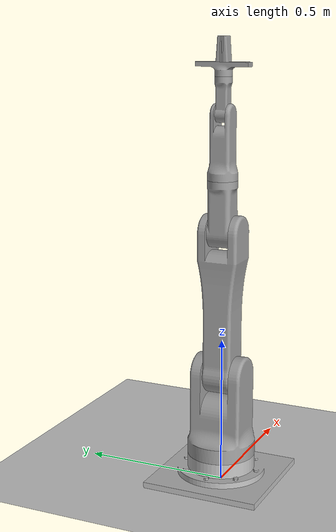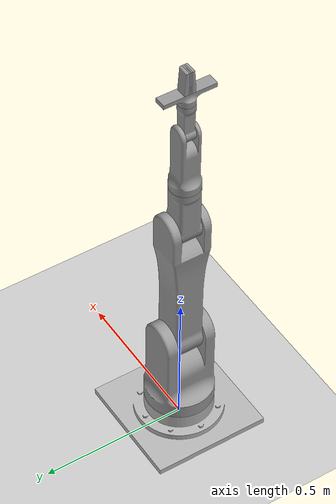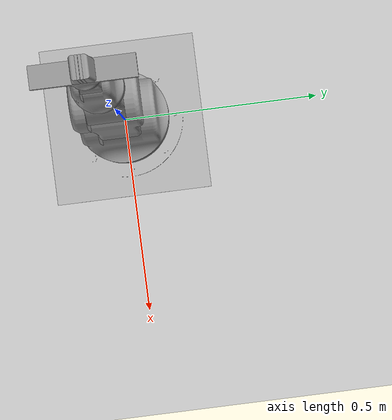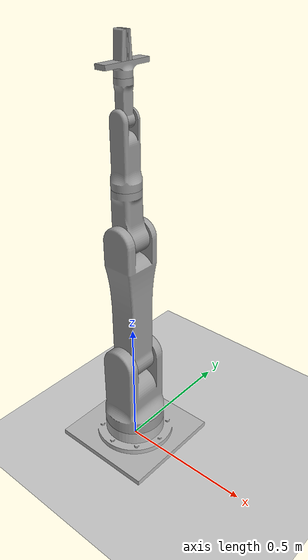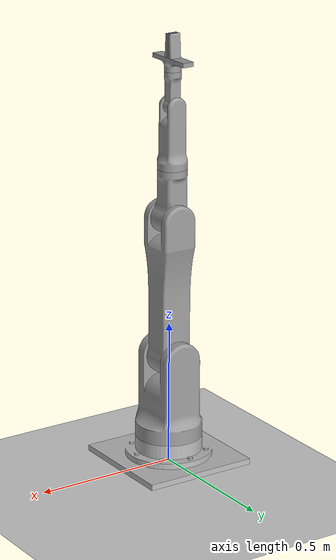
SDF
<sdf version="1.7">
 <world name="default">
  <light name="sun" type="directional">
   <pose>0 0 10 0 -0 0</pose>
   <diffuse>0.8 0.8 0.8 1</diffuse>
   <specular>0.2 0.2 0.2 1</specular>
   <attenuation>
    <range>1000</range>
    <constant>0.9</constant>
    <linear>0.01</linear>
    <quadratic>0.001</quadratic>
   </attenuation>
   <direction>-0.5 0.1 -0.9</direction>
   <spot><inner_angle>0</inner_angle><outer_angle>0</outer_angle><falloff>0</falloff></spot>
  </light>
  <model name="ground_plane">
   <static>1</static>
   <link name="link">
    <collision name="collision">
     <geometry><plane><normal>0 0 1</normal><size>100 100</size></plane></geometry>
     <surface>
      <contact><collide_bitmask>65535</collide_bitmask></contact>
      <friction><ode><mu>100</mu><mu2>50</mu2></ode></friction>
     </surface>
    </collision>
    <visual name="visual">
     <cast_shadows>0</cast_shadows>
     <geometry><plane><normal>0 0 1</normal><size>100 100</size></plane></geometry>
     <material>
      <script><uri>file://media/materials/scripts/gazebo.material</uri><name>Gazebo/Grey</name></script>
     </material>
    </visual>
   </link>
  </model>
  <gravity>0 0 -9.8</gravity>
  <magnetic_field>6e-06 2.3e-05 -4.2e-05</magnetic_field>
  <atmosphere type="adiabatic"/>
  <physics name="default_physics" default="0" type="ode">
   <max_step_size>0.001</max_step_size>
   <real_time_factor>1</real_time_factor>
   <real_time_update_rate>1000</real_time_update_rate>
   <ode>
    <solver>
     <type>quick</type>
     <iters>25</iters>
     <sor>1.0</sor>
     <use_dynamic_moi_rescaling>false</use_dynamic_moi_rescaling>
    </solver>
   </ode>
  </physics>
  <scene><ambient>0.4 0.4 0.4 1</ambient><background>0.7 0.7 0.7 1</background><shadows>1</shadows></scene>
  <spherical_coordinates>
   <surface_model>EARTH_WGS84</surface_model>
   <latitude_deg>0</latitude_deg>
   <longitude_deg>0</longitude_deg>
   <elevation>0</elevation>
   <heading_deg>0</heading_deg>
  </spherical_coordinates>
  <model name="robot_arm">
   <joint name="base_joint" type="fixed">
    <pose relative_to="__model__">0 0 0 0 -0 0</pose>
    <parent>world</parent>
    <child>base_link</child>
   </joint>
   <link name="base_link">
    <pose relative_to="base_joint">0 0 0 0 -0 0</pose>
    <inertial>
     <pose>0 -0 0.041324 0 -0 0</pose>
     <mass>18.0995</mass>
     <inertia>
      <ixx>0.167384</ixx>
      <ixy>0</ixy>
      <ixz>0</ixz>
      <iyy>0.167384</iyy>
      <iyz>6.16298e-33</iyz>
      <izz>0.310998</izz>
     </inertia>
    </inertial>
    <collision name="base_link_fixed_joint_lump__base_collision">
     <pose>0 0 0.01 0 -0 0</pose>
     <geometry>
      <mesh>
       <scale>0.001 0.001 0.001</scale>
       <uri>/home/fort/base/project_ws/src/robot_arm_description/meshes/base_link.stl</uri>
      </mesh>
     </geometry>
    </collision>
    <visual name="base_link_fixed_joint_lump__base_visual">
     <pose>0 0 0.01 0 -0 0</pose>
     <geometry>
      <mesh>
       <scale>0.001 0.001 0.001</scale>
       <uri>/home/fort/base/project_ws/src/robot_arm_description/meshes/base_link.stl</uri>
      </mesh>
     </geometry>
    </visual>
    <self_collide>1</self_collide>
   </link>
   <joint name="Revolute1" type="revolute">
    <pose relative_to="base_link">0 0 0.1 0 -0 0</pose>
    <parent>base_link</parent>
    <child>waist_1</child>
    <axis>
     <xyz>0 0 1</xyz>
     <limit><lower>0</lower><upper>6.28318</upper><effort>100</effort><velocity>100</velocity></limit>
     <dynamics><spring_reference>0</spring_reference><spring_stiffness>0</spring_stiffness></dynamics>
    </axis>
    <physics><ode><limit><cfm>0</cfm><erp>0.2</erp></limit></ode></physics>
    <sensor name="waist_1_ft_sensor" type="force_torque">
     <force_torque><frame>child</frame><measure_direction>child_to_parent</measure_direction></force_torque>
    </sensor>
   </joint>
   <link name="waist_1">
    <pose relative_to="Revolute1">0 0 0 0 -0 0</pose>
    <inertial>
     <pose>-0 -1e-06 0.123641 0 -0 0</pose>
     <mass>20.1835</mass>
     <inertia>
      <ixx>0.235705</ixx>
      <ixy>0</ixy>
      <ixz>0</ixz>
      <iyy>0.209956</iyy>
      <iyz>-1e-06</iyz>
      <izz>0.110543</izz>
     </inertia>
    </inertial>
    <collision name="waist_1_collision">
     <pose>0 0 -0.09 0 -0 0</pose>
     <geometry>
      <mesh>
       <scale>0.001 0.001 0.001</scale>
       <uri>/home/fort/base/project_ws/src/robot_arm_description/meshes/waist_1.stl</uri>
      </mesh>
     </geometry>
     <surface><friction><ode><mu>0.2</mu><mu2>0.2</mu2></ode></friction></surface>
    </collision>
    <visual name="waist_1_visual">
     <pose>0 0 -0.09 0 -0 0</pose>
     <geometry>
      <mesh>
       <scale>0.001 0.001 0.001</scale>
       <uri>/home/fort/base/project_ws/src/robot_arm_description/meshes/waist_1.stl</uri>
      </mesh>
     </geometry>
     <material>
      <script><name>Gazebo/Grey</name><uri>file://media/materials/scripts/gazebo.material</uri></script>
     </material>
    </visual>
    <self_collide>1</self_collide>
   </link>
   <joint name="Revolute2" type="revolute">
    <pose relative_to="waist_1">0 0.05 0.28 0 -0 0</pose>
    <parent>waist_1</parent>
    <child>upperarm_1</child>
    <axis>
     <xyz>0 -1 0</xyz>
     <limit><lower>-1.91986</lower><upper>1.91986</upper><effort>100</effort><velocity>100</velocity></limit>
     <dynamics><spring_reference>0</spring_reference><spring_stiffness>0</spring_stiffness></dynamics>
    </axis>
    <physics><ode><limit><cfm>0</cfm><erp>0.2</erp></limit></ode></physics>
    <sensor name="upperarm_1_ft_sensor" type="force_torque">
     <force_torque><frame>child</frame><measure_direction>child_to_parent</measure_direction></force_torque>
    </sensor>
   </joint>
   <link name="upperarm_1">
    <pose relative_to="Revolute2">0 0 0 0 -0 0</pose>
    <inertial>
     <pose>0 -0.05 0.232772 0 -0 0</pose>
     <mass>17.5886</mass>
     <inertia>
      <ixx>0.489324</ixx>
      <ixy>0</ixy>
      <ixz>0</ixz>
      <iyy>0.485246</iyy>
      <iyz>0</iyz>
      <izz>0.040061</izz>
     </inertia>
    </inertial>
    <collision name="upperarm_1_collision">
     <pose>0 -0.05 -0.37 0 -0 0</pose>
     <geometry>
      <mesh>
       <scale>0.001 0.001 0.001</scale>
       <uri>/home/fort/base/project_ws/src/robot_arm_description/meshes/upperarm_1.stl</uri>
      </mesh>
     </geometry>
     <surface><friction><ode><mu>0.2</mu><mu2>0.2</mu2></ode></friction></surface>
    </collision>
    <visual name="upperarm_1_visual">
     <pose>0 -0.05 -0.37 0 -0 0</pose>
     <geometry>
      <mesh>
       <scale>0.001 0.001 0.001</scale>
       <uri>/home/fort/base/project_ws/src/robot_arm_description/meshes/upperarm_1.stl</uri>
      </mesh>
     </geometry>
     <material>
      <script><name>Gazebo/Grey</name><uri>file://media/materials/scripts/gazebo.material</uri></script>
     </material>
    </visual>
    <self_collide>1</self_collide>
   </link>
   <joint name="Revolute3" type="revolute">
    <pose relative_to="upperarm_1">0 -0.09 0.49 0 -0 0</pose>
    <parent>upperarm_1</parent>
    <child>forearm1_1</child>
    <axis>
     <xyz>0 1 0</xyz>
     <limit><lower>-0.349066</lower><upper>2.0944</upper><effort>100</effort><velocity>100</velocity></limit>
     <dynamics><spring_reference>0</spring_reference><spring_stiffness>0</spring_stiffness></dynamics>
    </axis>
    <physics><ode><limit><cfm>0</cfm><erp>0.2</erp></limit></ode></physics>
    <sensor name="forearm1_1_ft_sensor" type="force_torque">
     <force_torque><frame>child</frame><measure_direction>child_to_parent</measure_direction></force_torque>
    </sensor>
   </joint>
   <link name="forearm1_1">
    <pose relative_to="Revolute3">0 0 0 0 -0 0</pose>
    <inertial>
     <pose>-0.006297 0.04 0.06478 0 -0 0</pose>
     <mass>4.07067</mass>
     <inertia>
      <ixx>0.019208</ixx>
      <ixy>0</ixy>
      <ixz>0.001037</ixz>
      <iyy>0.019543</iyy>
      <iyz>0</iyz>
      <izz>0.004706</izz>
     </inertia>
    </inertial>
    <collision name="forearm1_1_collision">
     <pose>0 0.04 -0.86 0 -0 0</pose>
     <geometry>
      <mesh>
       <scale>0.001 0.001 0.001</scale>
       <uri>/home/fort/base/project_ws/src/robot_arm_description/meshes/forearm1_1.stl</uri>
      </mesh>
     </geometry>
     <surface><friction><ode><mu>0.2</mu><mu2>0.2</mu2></ode></friction></surface>
    </collision>
    <visual name="forearm1_1_visual">
     <pose>0 0.04 -0.86 0 -0 0</pose>
     <geometry>
      <mesh>
       <scale>0.001 0.001 0.001</scale>
       <uri>/home/fort/base/project_ws/src/robot_arm_description/meshes/forearm1_1.stl</uri>
      </mesh>
     </geometry>
     <material>
      <script><name>Gazebo/Grey</name><uri>file://media/materials/scripts/gazebo.material</uri></script>
     </material>
    </visual>
    <self_collide>1</self_collide>
   </link>
   <joint name="Revolute4" type="revolute">
    <pose relative_to="forearm1_1">-0.01 0.04 0.175 0 -0 0</pose>
    <parent>forearm1_1</parent>
    <child>forearm2_1</child>
    <axis>
     <xyz>0 0 1</xyz>
     <limit><lower>0</lower><upper>6.28318</upper><effort>100</effort><velocity>100</velocity></limit>
     <dynamics><spring_reference>0</spring_reference><spring_stiffness>0</spring_stiffness></dynamics>
    </axis>
    <physics><ode><limit><cfm>0</cfm><erp>0.2</erp></limit></ode></physics>
    <sensor name="forearm2_1_ft_sensor" type="force_torque">
     <force_torque><frame>child</frame><measure_direction>child_to_parent</measure_direction></force_torque>
    </sensor>
   </joint>
   <link name="forearm2_1">
    <pose relative_to="Revolute4">0 0 0 0 -0 0</pose>
    <inertial>
     <pose>-0 1e-06 0.092684 0 -0 0</pose>
     <mass>2.84995</mass>
     <inertia>
      <ixx>0.013062</ixx>
      <ixy>0</ixy>
      <ixz>0</ixz>
      <iyy>0.012885</iyy>
      <iyz>0</iyz>
      <izz>0.002689</izz>
     </inertia>
    </inertial>
    <collision name="forearm2_1_collision">
     <pose>0.01 0 -1.035 0 -0 0</pose>
     <geometry>
      <mesh>
       <scale>0.001 0.001 0.001</scale>
       <uri>/home/fort/base/project_ws/src/robot_arm_description/meshes/forearm2_1.stl</uri>
      </mesh>
     </geometry>
     <surface><friction><ode><mu>0.2</mu><mu2>0.2</mu2></ode></friction></surface>
    </collision>
    <visual name="forearm2_1_visual">
     <pose>0.01 0 -1.035 0 -0 0</pose>
     <geometry>
      <mesh>
       <scale>0.001 0.001 0.001</scale>
       <uri>/home/fort/base/project_ws/src/robot_arm_description/meshes/forearm2_1.stl</uri>
      </mesh>
     </geometry>
     <material>
      <script><name>Gazebo/Grey</name><uri>file://media/materials/scripts/gazebo.material</uri></script>
     </material>
    </visual>
    <self_collide>1</self_collide>
   </link>
   <joint name="Revolute5" type="revolute">
    <pose relative_to="forearm2_1">0 -0.02 0.21 0 -0 0</pose>
    <parent>forearm2_1</parent>
    <child>wrist1_1</child>
    <axis>
     <xyz>0 1 0</xyz>
     <limit><lower>-0.785398</lower><upper>2.18166</upper><effort>100</effort><velocity>100</velocity></limit>
     <dynamics><spring_reference>0</spring_reference><spring_stiffness>0</spring_stiffness></dynamics>
    </axis>
    <physics><ode><limit><cfm>0</cfm><erp>0.2</erp></limit></ode></physics>
    <sensor name="wrist1_1_ft_sensor" type="force_torque">
     <force_torque><frame>child</frame><measure_direction>child_to_parent</measure_direction></force_torque>
    </sensor>
   </joint>
   <link name="wrist1_1">
    <pose relative_to="Revolute5">0 0 0 0 -0 0</pose>
    <inertial>
     <pose>2e-06 0.02 0.052993 0 -0 0</pose>
     <mass>0.699374</mass>
     <inertia>
      <ixx>0.001407</ixx>
      <ixy>0</ixy>
      <ixz>0</ixz>
      <iyy>0.001413</iyy>
      <iyz>0</iyz>
      <izz>0.000215</izz>
     </inertia>
    </inertial>
    <collision name="wrist1_1_collision">
     <pose>0.01 0.02 -1.245 0 -0 0</pose>
     <geometry>
      <mesh>
       <scale>0.001 0.001 0.001</scale>
       <uri>/home/fort/base/project_ws/src/robot_arm_description/meshes/wrist1_1.stl</uri>
      </mesh>
     </geometry>
     <surface><friction><ode><mu>0.2</mu><mu2>0.2</mu2></ode></friction></surface>
    </collision>
    <visual name="wrist1_1_visual">
     <pose>0.01 0.02 -1.245 0 -0 0</pose>
     <geometry>
      <mesh>
       <scale>0.001 0.001 0.001</scale>
       <uri>/home/fort/base/project_ws/src/robot_arm_description/meshes/wrist1_1.stl</uri>
      </mesh>
     </geometry>
     <material>
      <script><name>Gazebo/Grey</name><uri>file://media/materials/scripts/gazebo.material</uri></script>
     </material>
    </visual>
    <self_collide>1</self_collide>
   </link>
   <joint name="Revolute6" type="revolute">
    <pose relative_to="wrist1_1">0 0.02 0.12 0 -0 0</pose>
    <parent>wrist1_1</parent>
    <child>wrist2_1</child>
    <axis>
     <xyz>0 0 1</xyz>
     <limit><lower>0</lower><upper>6.28318</upper><effort>100</effort><velocity>100</velocity></limit>
     <dynamics><spring_reference>0</spring_reference><spring_stiffness>0</spring_stiffness></dynamics>
    </axis>
    <physics><ode><limit><cfm>0</cfm><erp>0.2</erp></limit></ode></physics>
    <sensor name="wrist2_1_ft_sensor" type="force_torque">
     <force_torque><frame>child</frame><measure_direction>child_to_parent</measure_direction></force_torque>
    </sensor>
   </joint>
   <link name="wrist2_1">
    <pose relative_to="Revolute6">0 0 0 0 -0 0</pose>
    <inertial>
     <pose>0 0 0.028169 0 -0 0</pose>
     <mass>0.503601</mass>
     <inertia>
      <ixx>0.000922</ixx>
      <ixy>0</ixy>
      <ixz>0</ixz>
      <iyy>0.000161</iyy>
      <iyz>0</iyz>
      <izz>0.000918</izz>
     </inertia>
    </inertial>
    <collision name="wrist2_1_collision">
     <pose>0.01 0 -1.365 0 -0 0</pose>
     <geometry>
      <mesh>
       <scale>0.001 0.001 0.001</scale>
       <uri>/home/fort/base/project_ws/src/robot_arm_description/meshes/wrist2_1.stl</uri>
      </mesh>
     </geometry>
     <surface><friction><ode><mu>0.2</mu><mu2>0.2</mu2></ode></friction></surface>
    </collision>
    <visual name="wrist2_1_visual">
     <pose>0.01 0 -1.365 0 -0 0</pose>
     <geometry>
      <mesh>
       <scale>0.001 0.001 0.001</scale>
       <uri>/home/fort/base/project_ws/src/robot_arm_description/meshes/wrist2_1.stl</uri>
      </mesh>
     </geometry>
     <material>
      <script><name>Gazebo/Grey</name><uri>file://media/materials/scripts/gazebo.material</uri></script>
     </material>
    </visual>
    <self_collide>1</self_collide>
   </link>
   <joint name="Slider10" type="prismatic">
    <pose relative_to="wrist2_1">0 0 0.045 0 -0 0</pose>
    <parent>wrist2_1</parent>
    <child>finger1_1</child>
    <axis>
     <xyz>0 1 0</xyz>
     <limit><lower>-0.08</lower><upper>-0.013</upper><effort>100</effort><velocity>100</velocity></limit>
     <dynamics><spring_reference>0</spring_reference><spring_stiffness>0</spring_stiffness></dynamics>
    </axis>
   </joint>
   <link name="finger1_1">
    <pose relative_to="Slider10">0 0 0 0 -0 0</pose>
    <inertial>
     <pose>-0 -0.010505 0.037236 0 -0 0</pose>
     <mass>0.122689</mass>
     <inertia>
      <ixx>6.71602e-05</ixx>
      <ixy>-6.48052e-15</ixy>
      <ixz>-2.29618e-15</ixz>
      <iyy>8.01294e-05</iyy>
      <iyz>-2.36523e-06</iyz>
      <izz>1.80308e-05</izz>
     </inertia>
    </inertial>
    <collision name="finger1_1_collision">
     <pose>0.01 0 -1.41 0 -0 0</pose>
     <geometry>
      <mesh>
       <scale>0.001 0.001 0.001</scale>
       <uri>/home/fort/base/project_ws/src/robot_arm_description/meshes/finger1_1.stl</uri>
      </mesh>
     </geometry>
     <surface><friction><ode><mu>0.2</mu><mu2>0.2</mu2></ode></friction></surface>
    </collision>
    <collision name="finger1_1_fixed_joint_lump__grip_pad1_1_collision_1">
     <pose>0.01 0 -1.41 0 -0 0</pose>
     <geometry>
      <mesh>
       <scale>0.001 0.001 0.001</scale>
       <uri>/home/fort/base/project_ws/src/robot_arm_description/meshes/grip_pad1_1.stl</uri>
      </mesh>
     </geometry>
     <surface><friction><ode><mu>0.2</mu><mu2>0.2</mu2></ode></friction></surface>
    </collision>
    <visual name="finger1_1_visual">
     <pose>0.01 0 -1.41 0 -0 0</pose>
     <geometry>
      <mesh>
       <scale>0.001 0.001 0.001</scale>
       <uri>/home/fort/base/project_ws/src/robot_arm_description/meshes/finger1_1.stl</uri>
      </mesh>
     </geometry>
     <material>
      <script><name>Gazebo/Grey</name><uri>file://media/materials/scripts/gazebo.material</uri></script>
     </material>
    </visual>
    <visual name="finger1_1_fixed_joint_lump__grip_pad1_1_visual_1">
     <pose>0.01 0 -1.41 0 -0 0</pose>
     <geometry>
      <mesh>
       <scale>0.001 0.001 0.001</scale>
       <uri>/home/fort/base/project_ws/src/robot_arm_description/meshes/grip_pad1_1.stl</uri>
      </mesh>
     </geometry>
     <material>
      <script><name>Gazebo/Grey</name><uri>file://media/materials/scripts/gazebo.material</uri></script>
     </material>
    </visual>
    <self_collide>1</self_collide>
   </link>
   <joint name="Slider9" type="prismatic">
    <pose relative_to="wrist2_1">0 0 0.045 0 -0 0</pose>
    <parent>wrist2_1</parent>
    <child>finger2_1</child>
    <axis>
     <xyz>0 1 0</xyz>
     <limit><lower>0.013</lower><upper>0.08</upper><effort>100</effort><velocity>100</velocity></limit>
     <dynamics><spring_reference>0</spring_reference><spring_stiffness>0</spring_stiffness></dynamics>
    </axis>
   </joint>
   <link name="finger2_1">
    <pose relative_to="Slider9">0 0 0 0 -0 0</pose>
    <inertial>
     <pose>0 0.010505 0.037236 0 -0 0</pose>
     <mass>0.122689</mass>
     <inertia>
      <ixx>6.71602e-05</ixx>
      <ixy>-2.5949e-14</ixy>
      <ixz>9.19424e-15</ixz>
      <iyy>8.01294e-05</iyy>
      <iyz>2.36523e-06</iyz>
      <izz>1.80308e-05</izz>
     </inertia>
    </inertial>
    <collision name="finger2_1_collision">
     <pose>0.01 0 -1.41 0 -0 0</pose>
     <geometry>
      <mesh>
       <scale>0.001 0.001 0.001</scale>
       <uri>/home/fort/base/project_ws/src/robot_arm_description/meshes/finger2_1.stl</uri>
      </mesh>
     </geometry>
     <surface><friction><ode><mu>0.2</mu><mu2>0.2</mu2></ode></friction></surface>
    </collision>
    <collision name="finger2_1_fixed_joint_lump__grip_pad2_1_collision_1">
     <pose>0.01 0 -1.41 0 -0 0</pose>
     <geometry>
      <mesh>
       <scale>0.001 0.001 0.001</scale>
       <uri>/home/fort/base/project_ws/src/robot_arm_description/meshes/grip_pad2_1.stl</uri>
      </mesh>
     </geometry>
     <surface><friction><ode><mu>0.2</mu><mu2>0.2</mu2></ode></friction></surface>
    </collision>
    <visual name="finger2_1_visual">
     <pose>0.01 0 -1.41 0 -0 0</pose>
     <geometry>
      <mesh>
       <scale>0.001 0.001 0.001</scale>
       <uri>/home/fort/base/project_ws/src/robot_arm_description/meshes/finger2_1.stl</uri>
      </mesh>
     </geometry>
     <material>
      <script><name>Gazebo/Grey</name><uri>file://media/materials/scripts/gazebo.material</uri></script>
     </material>
    </visual>
    <visual name="finger2_1_fixed_joint_lump__grip_pad2_1_visual_1">
     <pose>0.01 0 -1.41 0 -0 0</pose>
     <geometry>
      <mesh>
       <scale>0.001 0.001 0.001</scale>
       <uri>/home/fort/base/project_ws/src/robot_arm_description/meshes/grip_pad2_1.stl</uri>
      </mesh>
     </geometry>
     <material>
      <script><name>Gazebo/Grey</name><uri>file://media/materials/scripts/gazebo.material</uri></script>
     </material>
    </visual>
    <self_collide>1</self_collide>
   </link>
   <plugin name="control" filename="libgazebo_ros_control.so"><robotNamespace>/</robotNamespace></plugin>
   <plugin name="ft_sensor" filename="libgazebo_ros_ft_sensor.so">
    <updateRate>100.0</updateRate>
    <topicName>Revolute1_ft</topicName>
    <jointName>Revolute1</jointName>
    <robotNamespace>/</robotNamespace>
   </plugin>
   <plugin name="ft_sensor" filename="libgazebo_ros_ft_sensor.so">
    <updateRate>100.0</updateRate>
    <topicName>Revolute2_ft</topicName>
    <jointName>Revolute2</jointName>
    <robotNamespace>/</robotNamespace>
   </plugin>
   <plugin name="ft_sensor" filename="libgazebo_ros_ft_sensor.so">
    <updateRate>100.0</updateRate>
    <topicName>Revolute3_ft</topicName>
    <jointName>Revolute3</jointName>
    <robotNamespace>/</robotNamespace>
   </plugin>
   <plugin name="ft_sensor" filename="libgazebo_ros_ft_sensor.so">
    <updateRate>100.0</updateRate>
    <topicName>Revolute4_ft</topicName>
    <jointName>Revolute4</jointName>
    <robotNamespace>/</robotNamespace>
   </plugin>
   <plugin name="ft_sensor" filename="libgazebo_ros_ft_sensor.so">
    <updateRate>100.0</updateRate>
    <topicName>Revolute5_ft</topicName>
    <jointName>Revolute5</jointName>
    <robotNamespace>/</robotNamespace>
   </plugin>
   <plugin name="ft_sensor" filename="libgazebo_ros_ft_sensor.so">
    <updateRate>100.0</updateRate>
    <topicName>Revolute6_ft</topicName>
    <jointName>Revolute6</jointName>
    <robotNamespace>/</robotNamespace>
   </plugin>
   <frame name="base_joint2" attached_to="base_link"><pose>0 0 0.01 0 -0 0</pose></frame>
   <frame name="base" attached_to="base_joint2"/>
   <frame name="Rigid8" attached_to="finger1_1"><pose>0 -0.005203 0.04 0 -0 0</pose></frame>
   <frame name="grip_pad1_1" attached_to="Rigid8"/>
   <frame name="Rigid7" attached_to="finger2_1"><pose>0 0.005203 0.04 0 -0 0</pose></frame>
   <frame name="grip_pad2_1" attached_to="Rigid7"/>
  </model>
 </world>
</sdf>
